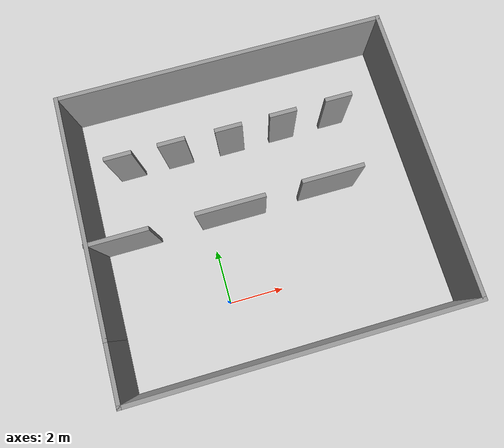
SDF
<?xml version='1.0'?>
<sdf version='1.7'>
  <model name='obstest'>
    <pose>2.00593 3.10244 0 0 -0 0</pose>
    <link name='Wall_0'>
      <collision name='Wall_0_Collision'>
        <geometry>
          <box>
            <size>2.25 0.15 2.5</size>
          </box>
        </geometry>
        <pose>0 0 1.25 0 -0 0</pose>
      </collision>
      <visual name='Wall_0_Visual'>
        <pose>0 0 1.25 0 -0 0</pose>
        <geometry>
          <box>
            <size>2.25 0.15 2.5</size>
          </box>
        </geometry>
        <material>
          <script>
            <uri>file://media/materials/scripts/gazebo.material</uri>
            <name>Gazebo/Grey</name>
          </script>
          <ambient>1 1 1 1</ambient>
        </material>
        <meta>
          <layer>0</layer>
        </meta>
      </visual>
      <pose>-6.03888 -4.3 0 0 -0 -1.5708</pose>
    </link>
    <link name='Wall_1'>
      <collision name='Wall_1_Collision'>
        <geometry>
          <box>
            <size>12.25 0.15 2.5</size>
          </box>
        </geometry>
        <pose>0 0 1.25 0 -0 0</pose>
      </collision>
      <visual name='Wall_1_Visual'>
        <pose>0 0 1.25 0 -0 0</pose>
        <geometry>
          <box>
            <size>12.25 0.15 2.5</size>
          </box>
        </geometry>
        <material>
          <script>
            <uri>file://media/materials/scripts/gazebo.material</uri>
            <name>Gazebo/Grey</name>
          </script>
          <ambient>1 1 1 1</ambient>
        </material>
        <meta>
          <layer>0</layer>
        </meta>
      </visual>
      <pose>0.011123 -5.35 0 0 -0 0</pose>
    </link>
    <link name='Wall_12'>
      <collision name='Wall_12_Collision'>
        <geometry>
          <box>
            <size>1 0.15 2.5</size>
          </box>
        </geometry>
        <pose>0 0 1.25 0 -0 0</pose>
      </collision>
      <visual name='Wall_12_Visual'>
        <pose>0 0 1.25 0 -0 0</pose>
        <geometry>
          <box>
            <size>1 0.15 2.5</size>
          </box>
        </geometry>
        <material>
          <script>
            <uri>file://media/materials/scripts/gazebo.material</uri>
            <name>Gazebo/Grey</name>
          </script>
          <ambient>1 1 1 1</ambient>
        </material>
        <meta>
          <layer>0</layer>
        </meta>
      </visual>
      <pose>-0.405049 2.65435 0 0 -0 0</pose>
    </link>
    <link name='Wall_14'>
      <collision name='Wall_14_Collision'>
        <geometry>
          <box>
            <size>1 0.15 2.5</size>
          </box>
        </geometry>
        <pose>0 0 1.25 0 -0 0</pose>
      </collision>
      <visual name='Wall_14_Visual'>
        <pose>0 0 1.25 0 -0 0</pose>
        <geometry>
          <box>
            <size>1 0.15 2.5</size>
          </box>
        </geometry>
        <material>
          <script>
            <uri>file://media/materials/scripts/gazebo.material</uri>
            <name>Gazebo/Grey</name>
          </script>
          <ambient>1 1 1 1</ambient>
        </material>
        <meta>
          <layer>0</layer>
        </meta>
      </visual>
      <pose>1.61235 2.66758 0 0 -0 0</pose>
    </link>
    <link name='Wall_16'>
      <collision name='Wall_16_Collision'>
        <geometry>
          <box>
            <size>1 0.15 2.5</size>
          </box>
        </geometry>
        <pose>0 0 1.25 0 -0 0</pose>
      </collision>
      <visual name='Wall_16_Visual'>
        <pose>0 0 1.25 0 -0 0</pose>
        <geometry>
          <box>
            <size>1 0.15 2.5</size>
          </box>
        </geometry>
        <material>
          <script>
            <uri>file://media/materials/scripts/gazebo.material</uri>
            <name>Gazebo/Grey</name>
          </script>
          <ambient>1 1 1 1</ambient>
        </material>
        <meta>
          <layer>0</layer>
        </meta>
      </visual>
      <pose>3.6875 2.70725 0 0 -0 0</pose>
    </link>
    <link name='Wall_18'>
      <collision name='Wall_18_Collision'>
        <geometry>
          <box>
            <size>2.25 0.15 2.5</size>
          </box>
        </geometry>
        <pose>0 0 1.25 0 -0 0</pose>
      </collision>
      <visual name='Wall_18_Visual'>
        <pose>0 0 1.25 0 -0 0</pose>
        <geometry>
          <box>
            <size>2.25 0.15 2.5</size>
          </box>
        </geometry>
        <material>
          <script>
            <uri>file://media/materials/scripts/gazebo.material</uri>
            <name>Gazebo/Grey</name>
          </script>
          <ambient>1 1 1 1</ambient>
        </material>
        <meta>
          <layer>0</layer>
        </meta>
      </visual>
      <pose>-5.01112 -0.096445 0 0 -0 0</pose>
    </link>
    <link name='Wall_20'>
      <collision name='Wall_20_Collision'>
        <geometry>
          <box>
            <size>2.5 0.15 2.5</size>
          </box>
        </geometry>
        <pose>0 0 1.25 0 -0 0</pose>
      </collision>
      <visual name='Wall_20_Visual'>
        <pose>0 0 1.25 0 -0 0</pose>
        <geometry>
          <box>
            <size>2.5 0.15 2.5</size>
          </box>
        </geometry>
        <material>
          <script>
            <uri>file://media/materials/scripts/gazebo.material</uri>
            <name>Gazebo/Grey</name>
          </script>
          <ambient>1 1 1 1</ambient>
        </material>
        <meta>
          <layer>0</layer>
        </meta>
      </visual>
      <pose>-1.05087 -0.05677 0 0 -0 0</pose>
    </link>
    <link name='Wall_22'>
      <collision name='Wall_22_Collision'>
        <geometry>
          <box>
            <size>2.25 0.15 2.5</size>
          </box>
        </geometry>
        <pose>0 0 1.25 0 -0 0</pose>
      </collision>
      <visual name='Wall_22_Visual'>
        <pose>0 0 1.25 0 -0 0</pose>
        <geometry>
          <box>
            <size>2.25 0.15 2.5</size>
          </box>
        </geometry>
        <material>
          <script>
            <uri>file://media/materials/scripts/gazebo.material</uri>
            <name>Gazebo/Grey</name>
          </script>
          <ambient>1 1 1 1</ambient>
        </material>
        <meta>
          <layer>0</layer>
        </meta>
      </visual>
      <pose>2.64615 0.04903 0 0 -0 0</pose>
    </link>
    <link name='Wall_3'>
      <collision name='Wall_3_Collision'>
        <geometry>
          <box>
            <size>8.75 0.15 2.5</size>
          </box>
        </geometry>
        <pose>0 0 1.25 0 -0 0</pose>
      </collision>
      <visual name='Wall_3_Visual'>
        <pose>0 0 1.25 0 -0 0</pose>
        <geometry>
          <box>
            <size>8.75 0.15 2.5</size>
          </box>
        </geometry>
        <material>
          <script>
            <uri>file://media/materials/scripts/gazebo.material</uri>
            <name>Gazebo/Grey</name>
          </script>
          <ambient>1 1 1 1</ambient>
        </material>
        <meta>
          <layer>0</layer>
        </meta>
      </visual>
      <pose>-6.03888 1.05 0 0 -0 1.5708</pose>
    </link>
    <link name='Wall_4'>
      <collision name='Wall_4_Collision'>
        <geometry>
          <box>
            <size>12.25 0.15 2.5</size>
          </box>
        </geometry>
        <pose>0 0 1.25 0 -0 0</pose>
      </collision>
      <visual name='Wall_4_Visual'>
        <pose>0 0 1.25 0 -0 0</pose>
        <geometry>
          <box>
            <size>12.25 0.15 2.5</size>
          </box>
        </geometry>
        <material>
          <script>
            <uri>file://media/materials/scripts/gazebo.material</uri>
            <name>Gazebo/Grey</name>
          </script>
          <ambient>1 1 1 1</ambient>
        </material>
        <meta>
          <layer>0</layer>
        </meta>
      </visual>
      <pose>0.011123 5.35 0 0 -0 0</pose>
    </link>
    <link name='Wall_5'>
      <collision name='Wall_5_Collision'>
        <geometry>
          <box>
            <size>10.75 0.15 2.5</size>
          </box>
        </geometry>
        <pose>0 0 1.25 0 -0 0</pose>
      </collision>
      <visual name='Wall_5_Visual'>
        <pose>0 0 1.25 0 -0 0</pose>
        <geometry>
          <box>
            <size>10.75 0.15 2.5</size>
          </box>
        </geometry>
        <material>
          <script>
            <uri>file://media/materials/scripts/gazebo.material</uri>
            <name>Gazebo/Grey</name>
          </script>
          <ambient>1 1 1 1</ambient>
        </material>
        <meta>
          <layer>0</layer>
        </meta>
      </visual>
      <pose>6.06112 0.05 0 0 -0 -1.5708</pose>
    </link>
    <link name='Wall_7'>
      <collision name='Wall_7_Collision'>
        <geometry>
          <box>
            <size>1 0.15 2.5</size>
          </box>
        </geometry>
        <pose>0 0 1.25 0 -0 0</pose>
      </collision>
      <visual name='Wall_7_Visual'>
        <pose>0 0 1.25 0 -0 0</pose>
        <geometry>
          <box>
            <size>1 0.15 2.5</size>
          </box>
        </geometry>
        <material>
          <script>
            <uri>file://media/materials/scripts/gazebo.material</uri>
            <name>Gazebo/Grey</name>
          </script>
          <ambient>1 1 1 1</ambient>
        </material>
        <meta>
          <layer>0</layer>
        </meta>
      </visual>
      <pose>-4.37688 2.68503 0 0 -0 0</pose>
    </link>
    <link name='Wall_9'>
      <collision name='Wall_9_Collision'>
        <geometry>
          <box>
            <size>1 0.15 2.5</size>
          </box>
        </geometry>
        <pose>0 0 1.25 0 -0 0</pose>
      </collision>
      <visual name='Wall_9_Visual'>
        <pose>0 0 1.25 0 -0 0</pose>
        <geometry>
          <box>
            <size>1 0.15 2.5</size>
          </box>
        </geometry>
        <material>
          <script>
            <uri>file://media/materials/scripts/gazebo.material</uri>
            <name>Gazebo/Grey</name>
          </script>
          <ambient>1 1 1 1</ambient>
        </material>
        <meta>
          <layer>0</layer>
        </meta>
      </visual>
      <pose>-2.46212 2.6808 0 0 -0 0</pose>
    </link>
    <static>1</static>
  </model>
</sdf>
